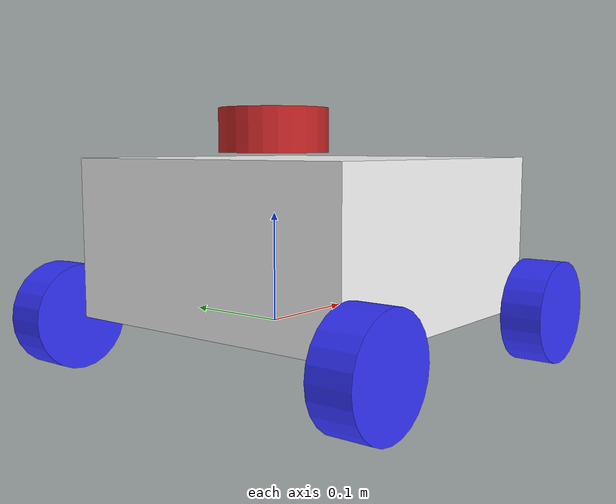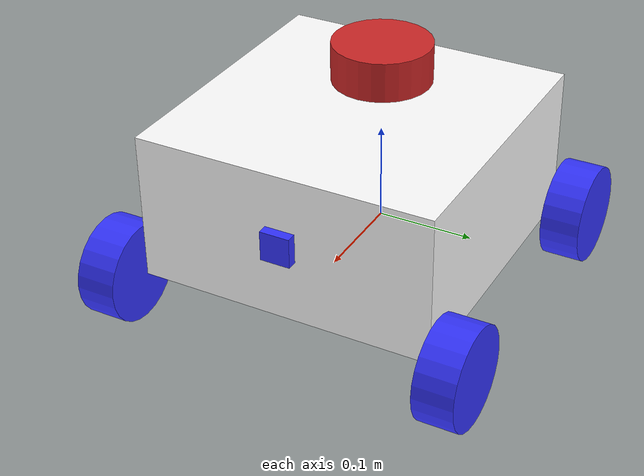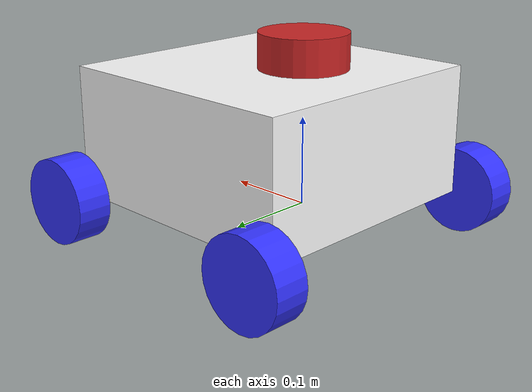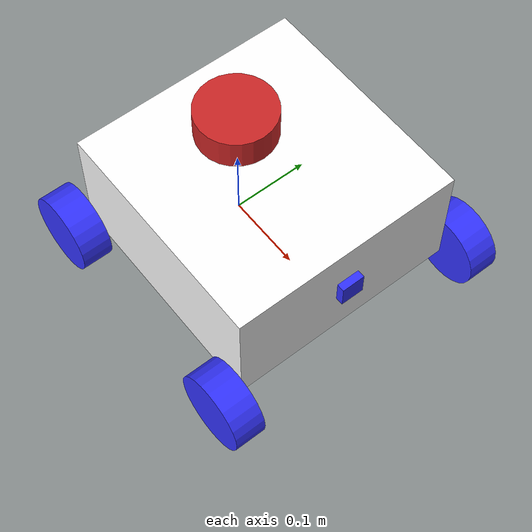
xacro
<?xml version="1.0"?>
<robot xmlns:xacro="http://www.ros.org/wiki/xacro"  name="robot">

      <xacro:include filename="robot_core.xacro"/>

      <xacro:include filename="gazebo_control.xacro"/>

      <xacro:include filename="lidar.xacro"/>
      <xacro:include filename="depth.xacro"/>

</robot>

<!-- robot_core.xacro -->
<robot xmlns:xacro="http://www.ros.org/wiki/xacro" >
        <xacro:include filename="inertial_macros.xacro"/>

    <material name="white">
        <color rgba="1 1 1 1"/>
    </material>
    <material name="orange">
        <color rgba="1 0.3 0.1 1"/>
    </material>
    <material name="blue">
        <color rgba="0.2 0.2 1 1"/>
    </material>
    <material name="black">
        <color rgba="0 0 0 1"/>
    </material>

    <link name="base_link">

    </link>

    <joint name="base_footprint_joint" type="fixed">
        <parent link="base_link"/>
        <child link="base_footprint"/>
        <origin xyz="0 0 0" rpy="0 0 0"/>
    </joint>

    <link name="base_footprint">

    </link>

    <joint name="chassis_joint" type="fixed">
        <parent link="base_link"/>
        <child link="chassis"/>
        <origin xyz="-0.1 0 0"/>
    </joint>

    <link name="chassis">
        <visual>
            <origin xyz="0.15 0 0.075"/>
            <geometry>
                <box size="0.3 0.3 0.15"/>
            </geometry>
            <material name="white"/>
        </visual>
        <collision>
            <origin xyz="0.15 0 0.075"/>
            <geometry>
                <box size="0.3 0.3 0.15"/>
            </geometry>
            <material name="white"/>
        </collision>
        <xacro:inertial_box mass="0.5" x="0.3" y="0.3" z="0.15">
            <origin xyz="0.15 0 0.075" rpy="0 0 0"/>
        </xacro:inertial_box>
    </link>
    <gazebo reference="chassis">
        <material>Gazebo/Red</material>
    </gazebo>
 <joint name="lw1" type="fixed">
        <parent link="base_link"/>
        <child link="l1"/>
        <origin xyz="0.2 0.175 0" rpy="-${pi/2} 0 0" />
        <axis xyz="0 0 1"/>
 </joint>
 <link name="l1">
        <visual>
            <geometry>
                <cylinder radius="0.05" length="0.04"/>
            </geometry>
            <material name="blue"/>
        </visual>
        <collision>
            <geometry>
                <cylinder radius="0.05" length="0.04"/>
            </geometry>
        </collision>
        <xacro:inertial_cylinder mass="0.1" length="0.04" radius="0.05">
            <origin xyz="0 0 0" rpy="0 0 0"/>
        </xacro:inertial_cylinder>
    </link>
    <gazebo reference="l1">
        <material>Gazebo/Black</material>
        <mu1 value="0.001"/>
        <mu2 value="0.001"/>
    </gazebo>

    <joint name="rw1" type="fixed">
        <parent link="base_link"/>
        <child link="r1"/>
        <origin xyz="0.2 -0.175 0" rpy="${pi/2} 0 0" />
        <axis xyz="0 0 -1"/>
    </joint>

    <link name="r1">
        <visual>
            <geometry>
                <cylinder radius="0.05" length="0.04"/>
            </geometry>
            <material name="blue"/>
        </visual>
        <collision>
            <geometry>
                <cylinder radius="0.05" length="0.04"/>
            </geometry>
        </collision>
        <xacro:inertial_cylinder mass="0.1" length="0.04" radius="0.05">
            <origin xyz="0 0 0" rpy="0 0 0"/>
        </xacro:inertial_cylinder>
    </link>
    <gazebo reference="r1">
        <material>Gazebo/Black</material>
        <mu1 value="0.001"/>
        <mu2 value="0.001"/>
    </gazebo>

    <joint name="rw2" type="continuous">
        <parent link="base_link"/>
        <child link="r2"/>
        <origin xyz="-0.1 -0.175 0" rpy="${pi/2} 0 0" />
        <axis xyz="0 0 2"/>
    </joint>

    <link name="r2">
        <visual>
            <geometry>
                <cylinder radius="0.05" length="0.04"/>
            </geometry>
            <material name="blue"/>
        </visual>
        <collision>
            <geometry>
                <cylinder radius="0.05" length="0.04"/>
            </geometry>
        </collision>
        <xacro:inertial_cylinder mass="0.1" length="0.04" radius="0.05">
            <origin xyz="0 0 0" rpy="0 0 0"/>
        </xacro:inertial_cylinder>
    </link>
    <gazebo reference="r2">
        <material>Gazebo/Black</material>
    </gazebo>

    <joint name="lw2" type="continuous">
        <parent link="base_link"/>
        <child link="l2"/>
        <origin xyz="-0.1 0.175 0" rpy="${pi/2} 0 0" />
        <axis xyz="0 0 -1"/>
    </joint>

    <link name="l2">
        <visual>
            <geometry>
                <cylinder radius="0.05" length="0.04"/>
            </geometry>
            <material name="blue"/>
        </visual>
        <collision>
            <geometry>
                <cylinder radius="0.05" length="0.04"/>
            </geometry>
        </collision>
        <xacro:inertial_cylinder mass="0.1" length="0.04" radius="0.05">
            <origin xyz="0 0 0" rpy="0 0 0"/>
        </xacro:inertial_cylinder>
    </link>
    <gazebo reference="l2">
        <material>Gazebo/Black</material>
    </gazebo>

</robot>

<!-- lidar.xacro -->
<robot xmlns:xacro="http://www.ros.org/wiki/xacro" >

    <joint name="laser_joint" type="fixed">
        <parent link="chassis"/>
        <child link="laser_frame"/>
        <origin xyz="0.1 0 0.175" rpy="0 0 0"/>
    </joint>

    <link name="laser_frame">
        <visual>
            <geometry>
                <cylinder radius="0.05" length="0.04"/>
            </geometry>
            <material name="red"/>
        </visual>
        <collision>
            <geometry>
                <cylinder radius="0.05" length="0.04"/>
            </geometry>
        </collision>
        <xacro:inertial_cylinder mass="0.1" length="0.04" radius="0.05">
            <origin xyz="0 0 0" rpy="0 0 0"/>
        </xacro:inertial_cylinder>
    </link>

    <gazebo reference="laser_frame">
        <material>Gazebo/Red</material>

        <sensor name="laser" type="ray">
            <pose> 0 0 0 0 0 0 </pose>
            <visualize>true</visualize>
            <update_rate>10</update_rate>
            <ray>
                <scan>
                    <horizontal>
                        <samples>360</samples>
                        <min_angle>-3.14</min_angle>
                        <max_angle>3.14</max_angle>
                    </horizontal>
                </scan>
                <range>
                    <min>0.3</min>
                    <max>12</max>
                </range>
            </ray>
            <plugin name="laser_controller" filename="libgazebo_ros_ray_sensor.so">
                <ros>
                    <argument>~/out:=scan</argument>
                </ros>
                <output_type>sensor_msgs/LaserScan</output_type>
                <frame_name>laser_frame</frame_name>
            </plugin>
        </sensor>
    </gazebo>

</robot>

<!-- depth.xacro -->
<robot xmlns:xacro="http://www.ros.org/wiki/xacro" >

    <joint name="camera_joint" type="fixed">
        <parent link="chassis"/>
        <child link="camera_link"/>
        <origin xyz="0.305 0 0.08" rpy="0 0 0"/>
    </joint>

    <link name="camera_link">
        <visual>
            <geometry>
                <box size="0.010 0.03 0.03"/>
            </geometry>
            <material name="blue"/>
        </visual>
    </link>

    <joint name="camera_optical_joint" type="fixed">
        <parent link="camera_link"/>
        <child link="camera_link_optical"/>
        <origin xyz="0 0 0" rpy="${-pi/2} 0 ${-pi/2}"/>
    </joint>

    <link name="camera_link_optical"></link>

    <gazebo reference="camera_link">
        <material>Gazebo/Blue</material>

        <sensor name="camera" type="depth">
            <pose> 0 0 0 0 0 0 </pose>
            <visualize>true</visualize>
            <update_rate>10</update_rate>
            <camera>
                <horizontal_fov>1.089</horizontal_fov>
                <image>
                    <format>B8R8G8</format>
                    <width>640</width>
                    <height>480</height>
                </image>
                <clip>
                    <near>0.05</near>
                    <far>8.0</far>
                </clip>
            </camera>
            <plugin name="camera_controller" filename="libgazebo_ros_camera.so">
                <frame_name>camera_link_optical</frame_name>
                <min_depth>0.1</min_depth>
                <max_depth>100.0</max_depth>

            </plugin>
        </sensor>
    </gazebo>

</robot>
